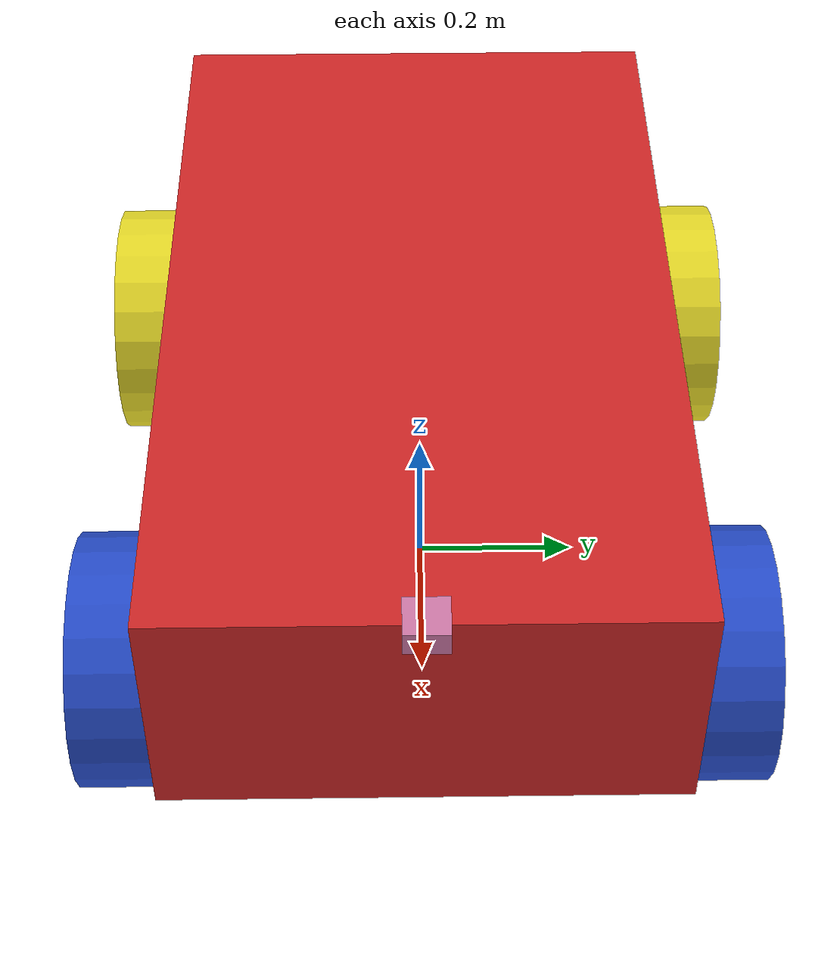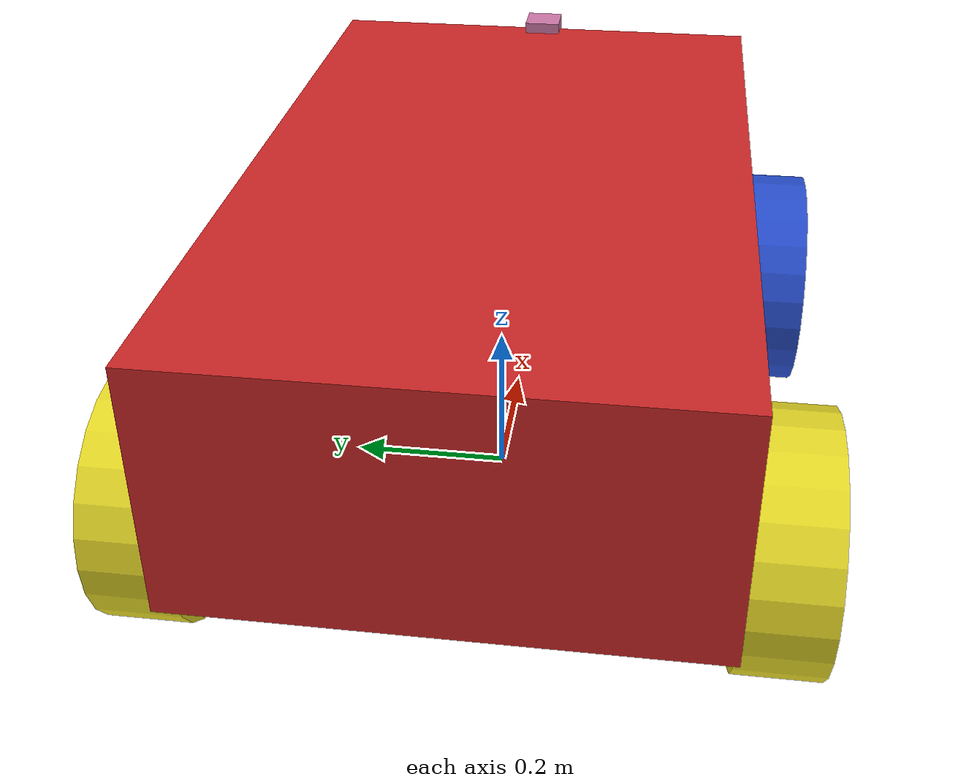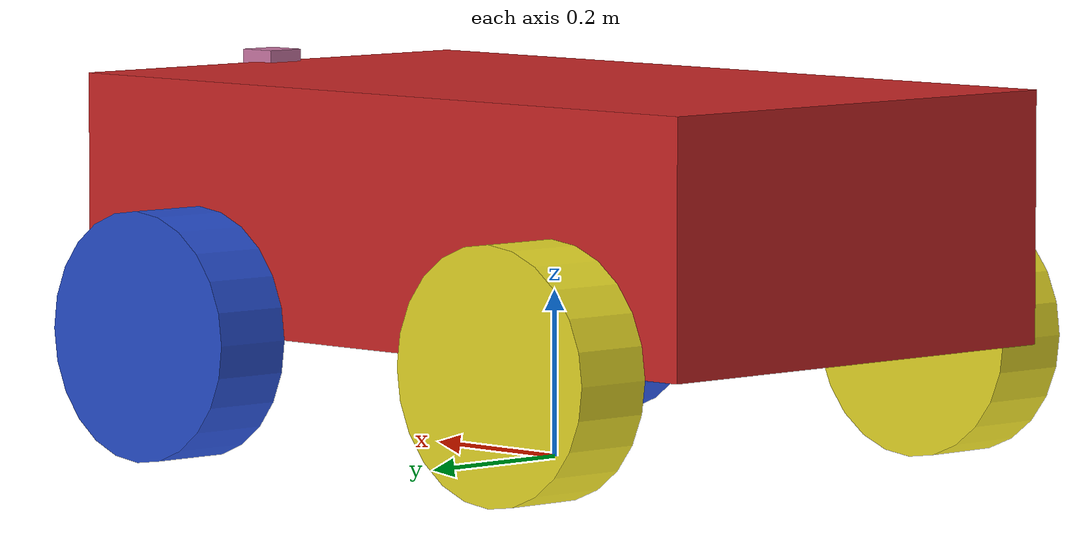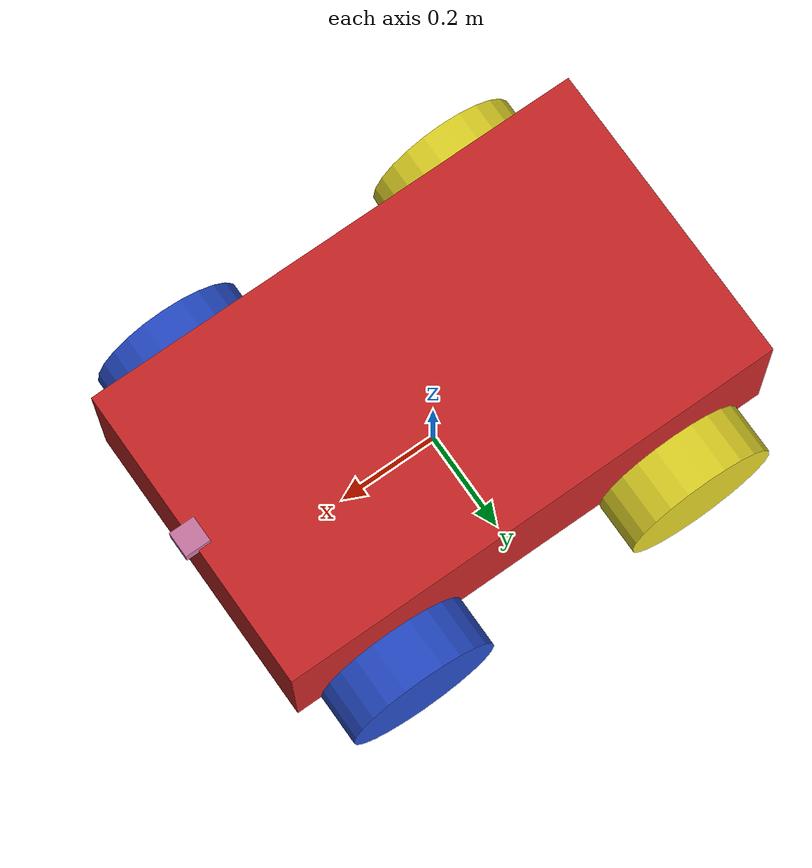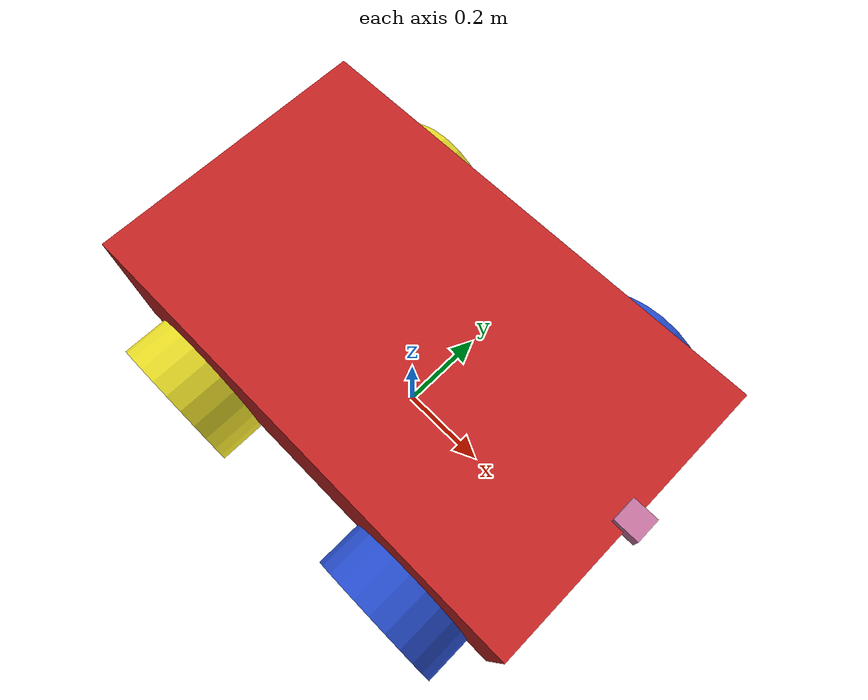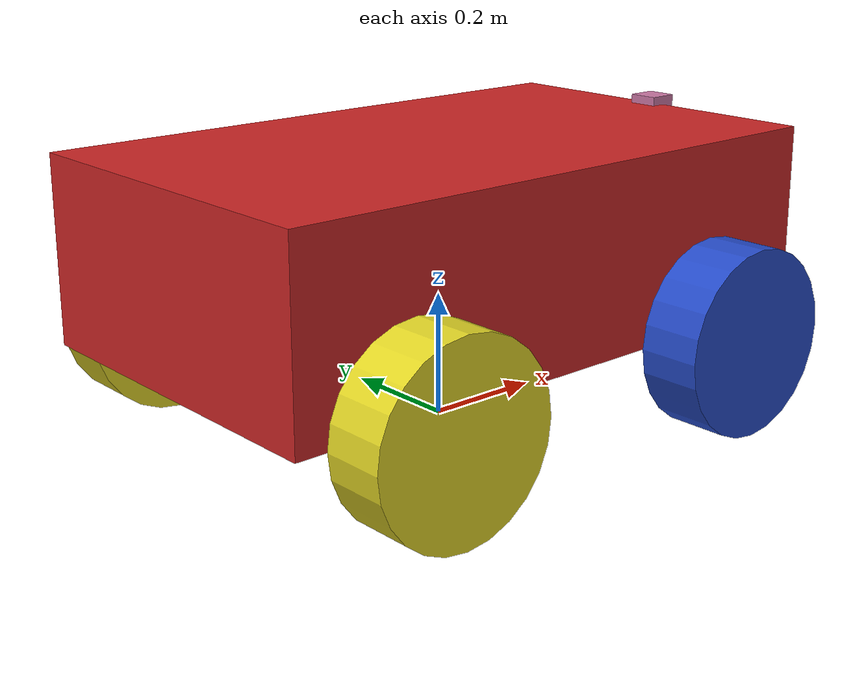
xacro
<?xml version="1.0"?>
<robot name="four_wheel" xmlns:xacro="https://www.ros.org/wiki/xacro">

    <xacro:property name="pi_const" value="3.14150265" />

    <xacro:property name="length" value="1"/>
    <xacro:property name="height" value="0.3" />
    <xacro:property name="breadth" value="0.6" />

    <xacro:property name="radius" value="0.15" />
    <xacro:property name="d" value="0.1" />

    <xacro:property name="s1" value="${(height/2)+radius}" />
    <xacro:property name="s2" value="${2*radius}" />
    <xacro:property name="s3" value="${2*radius}" />
    <xacro:property name="s4" value="${breadth/2 + d/2}" />

    <!-- Densitites -->
    <xacro:property name="d1" value="2710.0" />
    <xacro:property name="d2" value="2710.0" />

    <!-- Mass  -->
    <xacro:property name="m1" value="${d1*length*breadth*height}" />
    <xacro:property name="m2" value="${d2*pi_const*radius*radius*d}" />

    <!-- Inertia   -->
    <!-- Box   -->
    <xacro:property name="Ix_box" value="${(1/12)*m1*(height*height+breadth*breadth)}"/>
    <xacro:property name="Iy_box" value="${(1/12)*m1*(length*length+height*height)}"/>
    <xacro:property name="Iz_box" value="${(1/12)*m1*(length*length+breadth*breadth)}"/>

    <xacro:property name="Iz_wheel" value="${0.5*m2*radius*radius}"/>
    <xacro:property name="I_wheel" value="${(1.0/12.0)*m2*(3.0*radius*radius+d*d)}"/>

    <xacro:macro name="inertia_body">
        <inertial>
            <origin rpy="0.0 0.0 0.0" xyz="0 0 ${s1}"/>
            <mass value="${m1}"/>
            <inertia ixx="${Ix_box}" ixy="0.0" ixz="0.0" iyy="${Iy_box}" iyz="0.0" izz="${Iz_box}"/>
        </inertial>
    </xacro:macro>

    <xacro:macro name="inertia_wheel">
        <inertial>
            <origin xyz="0.0 0.0 0.0" rpy="1.570795 0.0 0.0"/>
            <mass value="${m2}"/>
            <inertia ixx="${I_wheel}" ixy="0.0" ixz="0.0" iyy="${I_wheel}" iyz="0.0" izz="${Iz_wheel}"/>
        </inertial>
    </xacro:macro>

    <xacro:include filename="$(find four_wheel_description)/model/four_rover_main.gazebo.xacro" />
    <xacro:include filename="$(find four_wheel_description)/model/parts/base/base_link.xacro"/>
    <xacro:include filename="$(find four_wheel_description)/model/parts/wheels/wheels.xacro"/>
    <xacro:include filename="$(find four_wheel_description)/model/parts/camera/camera.xacro" />

</robot>

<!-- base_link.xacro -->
<robot xmlns:xacro="http://www.ros.org/wiki/xacro">
    <link name="base_footprint"> </link>
    <joint name="base_link_joint" type="fixed">
        <parent link="base_footprint"/>
        <child link="base_link"/>
    </joint>

    <link name="base_link">
        <visual>
            <origin xyz="0 0 ${s1}" rpy="0 0 0"/>
            <geometry>
                <box size="${length} ${breadth} ${height}"/>
            </geometry>
        </visual>

        <collision>
            <origin xyz="0 0 ${s1}" rpy="0 0 0"/>
            <geometry>
                <box size="${length} ${breadth} ${height}"/>
            </geometry>
        </collision>
        <xacro:inertia_body />
    </link>
    <xacro:include filename="$(find four_wheel_description)/model/parts/base/base_link.gazebo.xacro" />
</robot>

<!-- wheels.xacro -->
<robot xmlns:xacro="http://www.ros.org/wiki/xacro">
    <joint name="d1_wheel_joint" type="continuous">
        <parent link="base_link"/>
        <child link="d1_wheel_link"/>
        <origin xyz="${-s2} ${-s4} ${radius}" rpy="0 0 0" />
        <axis xyz="0 1 0" />
        <limit effort="50000" velocity="10"/>
        <dynamics damping="1.0" friction="1.0" />
    </joint>

    <link name="d1_wheel_link">
        <visual>
            <origin xyz="0 0.0 0.0" rpy="1.570795 0.0 0.0"/>
            <geometry>
                <cylinder radius="${radius}" length="${d}"/>
            </geometry>
        </visual>

        <collision>
            <origin xyz="0 0.0 0.0" rpy="1.570795 0.0 0.0"/>
            <geometry>
                <cylinder radius="${radius}" length="${d}"/>
            </geometry>
        </collision>

        <xacro:inertia_wheel />
    </link>

    <joint name="d2_wheel_joint" type="continuous">
        <parent link="base_link"/>
        <child link="d2_wheel_link"/>
        <origin xyz="${-s2} ${s4} ${radius}" rpy="0.0 0.0 0.0"/>
        <axis xyz="0 1 0"/>
        <limit effort="50000" velocity="10"/>
        <dynamics damping="1.0" friction="1.0" />
    </joint>

    <link name="d2_wheel_link">
        <visual>
            <origin xyz="0 0.0 0.0" rpy="1.570795 0.0 0.0"/>
            <geometry>
                <cylinder radius="${radius}" length="${d}"/>
            </geometry>
        </visual>

        <collision>
            <origin xyz="0 0.0 0.0" rpy="1.570795 0.0 0.0"/>
            <geometry>
                <cylinder radius="${radius}" length="${d}"/>
            </geometry>
        </collision>
        <xacro:inertia_wheel />
    </link>

    <!-- Caster wheels  -->
     <link name="caster1_link">
        <visual>
            <origin xyz="0 0 0" rpy="1.570795 0 0"/>
            <geometry>
                <cylinder radius="${radius}" length="${d}"/>
            </geometry>
        </visual>

        <collision>
            <origin xyz="0 0 0" rpy="1.570795 0 0"/>
            <geometry>
                <cylinder radius="${radius}" length="${d}"/>
            </geometry>
        </collision>
        <xacro:inertia_wheel />
    </link>

    <joint name="caster1_joint" type="fixed">
        <parent link="base_link"/>
        <child link="caster1_link"/>
        <origin xyz="${s2} ${-s4} ${radius}" rpy="0 0 0" />
        <axis xyz="0 1 0"/>
        <limit effort="50000" velocity="10"/>
        <dynamics damping="1.0" friction="1.0" />
    </joint>

    <link name="caster2_link">
        <visual>
            <origin xyz="0 0 0" rpy="1.570795 0 0"/>
            <geometry>
                <cylinder radius="${radius}" length="${d}"/>
            </geometry>
        </visual>

        <collision>
            <origin xyz="0 0 0" rpy="1.570795 0 0"/>
            <geometry>
                <cylinder radius="${radius}" length="${d}"/>
            </geometry>
        </collision>
        <xacro:inertia_wheel />
    </link>

    <joint name="caster2_joint" type="fixed">
        <parent link="base_link"/>
        <child link="caster2_link"/>
        <origin xyz="${s2} ${s4} ${radius}" rpy="0 0 0" />
        <axis xyz="0 1 0"/>
        <limit effort="50000" velocity="10"/>
        <dynamics damping="1.0" friction="1.0" />
    </joint>

    <xacro:include filename="$(find four_wheel_description)/model/parts/wheels/wheels.gazebo.xacro" />
</robot>

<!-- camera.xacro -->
<robot xmlns:xacro="http://www.ros.org/wiki/xacro">

    <link name="camera_link">
        <visual>
            <origin xyz="0 0 0.0" rpy="0 0 0"/>
            <geometry>
                <box size="0.05 0.05 0.03"/>
            </geometry>
        </visual>

        <collision name='collision'>
            <origin xyz="0.0 0.0 0.05" rpy="0 0 0"/>
            <geometry>
                <box size="0.05 0.05 0.03"/>
            </geometry>
        </collision>
    </link>

    <link name="camera_link_optical" />

    <joint name="camera_optical_joint" type="fixed">
        <parent link="camera_link"/>
        <child link="camera_link_optical"/>
        <origin xyz="0 0 0" rpy="-1.5708 0 -1.5708"/>
    </joint>

    <joint name="base_camera_joint" type="fixed">
        <origin xyz="${length/2} 0 ${height+radius}"/>
        <parent link="base_link"/>
        <child link="camera_link"/>
    </joint>

    <xacro:include filename="$(find four_wheel_description)/model/parts/camera/camera.gazebo.xacro" />
</robot>
